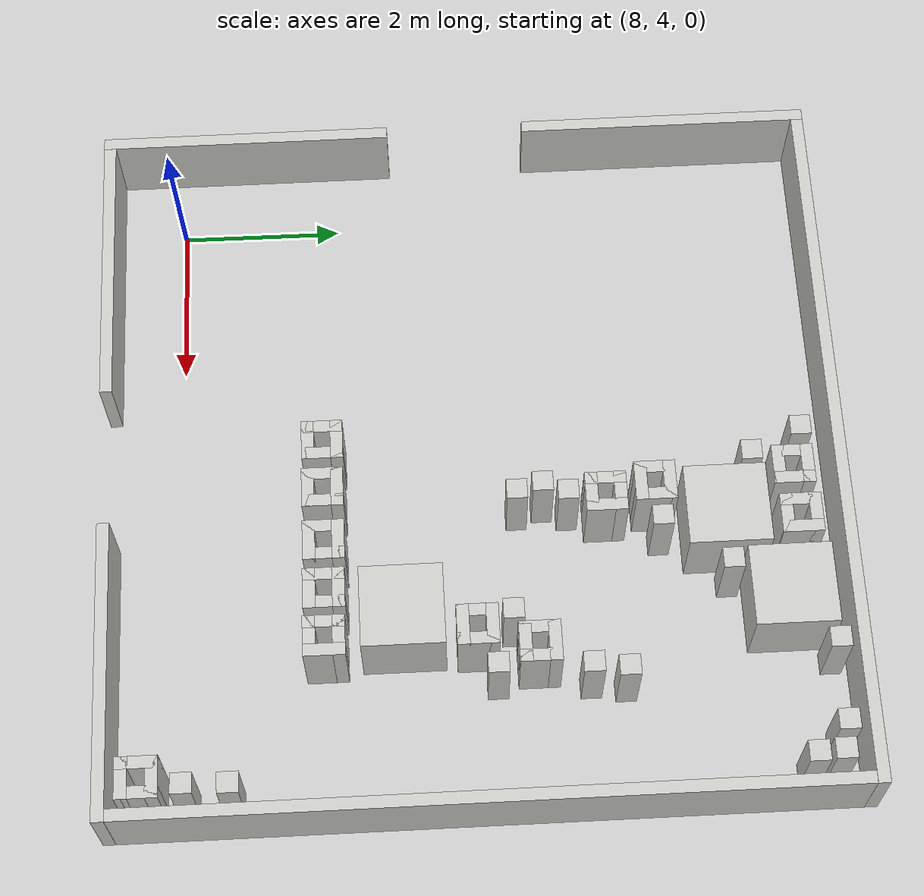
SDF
<sdf version="1.6">
 <world name="default">
  <model name="ground_plane">
   <static>1</static>
   <link name="link">
    <collision name="collision">
     <geometry><plane><normal>0 0 1</normal><size>100 100</size></plane></geometry>
     <surface><friction><ode><mu>100</mu><mu2>50</mu2></ode></friction></surface>
    </collision>
    <visual name="visual">
     <cast_shadows>0</cast_shadows>
     <geometry><plane><normal>0 0 1</normal><size>100 100</size></plane></geometry>
     <material>
      <script><uri>file://media/materials/scripts/concrete.material</uri><name>Concrete/1</name></script>
     </material>
    </visual>
   </link>
  </model>
  <model name="room_5x5_right">
   <static>1</static>
   <pose>11.5539 7.57729 0 0 -0 0</pose>
   <link name="Wall_1">
    <collision name="Wall_1_Collision">
     <geometry><box><size>8.75 0.15 1</size></box></geometry>
     <pose>0 0 0.5 0 -0 0</pose>
    </collision>
    <visual name="Wall_1_Visual">
     <pose>0 0 0.5 0 -0 0</pose>
     <geometry><box><size>8.75 0.15 1</size></box></geometry>
     <material>
      <script><uri>file://media/materials/scripts/gazebo.material</uri><name>Gazebo/CeilingTiled</name></script>
      <ambient>1 0.764706 0.305882 1</ambient>
     </material>
    </visual>
    <pose>4.44912 -0.000431 0 0 0 -1.5708</pose>
   </link>
   <link name="Wall_2">
    <collision name="Wall_2_Collision">
     <geometry><box><size>3.65 0.15 1</size></box></geometry>
     <pose>0 0 0.5 0 -0 0</pose>
    </collision>
    <visual name="Wall_2_Visual">
     <pose>0 0 0.5 0 -0 0</pose>
     <geometry><box><size>3.65 0.15 1</size></box></geometry>
     <material>
      <script><uri>file://media/materials/scripts/gazebo.material</uri><name>Gazebo/CeilingTiled</name></script>
      <ambient>1 0.764706 0.305882 1</ambient>
     </material>
    </visual>
    <pose>-4.44961 2.70076 0 0 0 -1.5708</pose>
   </link>
   <link name="Wall_3">
    <collision name="Wall_3_Collision">
     <geometry><box><size>3.65 0.15 1</size></box></geometry>
     <pose>0 0 0.5 0 -0 0</pose>
    </collision>
    <visual name="Wall_3_Visual">
     <pose>0 0 0.5 0 -0 0</pose>
     <geometry><box><size>3.65 0.15 1</size></box></geometry>
     <material>
      <script><uri>file://media/materials/scripts/gazebo.material</uri><name>Gazebo/CeilingTiled</name></script>
      <ambient>1 0.764706 0.305882 1</ambient>
     </material>
    </visual>
    <pose>2.69961 -4.45076 0 0 -0 0</pose>
   </link>
   <link name="Wall_4">
    <collision name="Wall_4_Collision">
     <geometry><box><size>8.90028 0.15 1</size></box></geometry>
     <pose>0 0 0.5 0 -0 0</pose>
    </collision>
    <visual name="Wall_4_Visual">
     <pose>0 0 0.5 0 -0 0</pose>
     <geometry><box><size>8.90028 0.15 1</size></box></geometry>
     <material>
      <script><uri>file://media/materials/scripts/gazebo.material</uri><name>Gazebo/CeilingTiled</name></script>
      <ambient>1 0.764706 0.305882 1</ambient>
     </material>
    </visual>
    <pose>0.074346 4.45022 0 0 0 -6.5e-05</pose>
   </link>
   <link name="Wall_5">
    <collision name="Wall_5_Collision">
     <geometry><box><size>3.5 0.15 1</size></box></geometry>
     <pose>0 0 0.5 0 -0 0</pose>
    </collision>
    <visual name="Wall_5_Visual">
     <pose>0 0 0.5 0 -0 0</pose>
     <geometry><box><size>3.5 0.15 1</size></box></geometry>
     <material>
      <script><uri>file://media/materials/scripts/gazebo.material</uri><name>Gazebo/CeilingTiled</name></script>
      <ambient>1 0.764706 0.305882 1</ambient>
     </material>
    </visual>
    <pose>-2.62383 -4.4498 0 0 -0 0</pose>
   </link>
   <link name="Wall_6">
    <collision name="Wall_6_Collision">
     <geometry><box><size>3.65 0.15 1</size></box></geometry>
     <pose>0 0 0.5 0 -0 0</pose>
    </collision>
    <visual name="Wall_6_Visual">
     <pose>0 0 0.5 0 -0 0</pose>
     <geometry><box><size>3.65 0.15 1</size></box></geometry>
     <material>
      <script><uri>file://media/materials/scripts/gazebo.material</uri><name>Gazebo/CeilingTiled</name></script>
      <ambient>1 0.764706 0.305882 1</ambient>
     </material>
    </visual>
    <pose>-4.44941 -2.70044 0 0 0 -1.5708</pose>
   </link>
  </model>
  <model name="obstacle_squarepillar_medium_clone_0">
   <static>1</static>
   <pose>11.4578 5.7594 0 0 -0 0</pose>
   <link name="Wall_1">
    <collision name="Wall_1_Collision">
     <geometry><box><size>0.5 0.15 1</size></box></geometry>
     <pose>0 0 0.5 0 -0 0</pose>
    </collision>
    <visual name="Wall_1_Visual">
     <pose>0 0 0.5 0 -0 0</pose>
     <geometry><box><size>0.5 0.15 1</size></box></geometry>
     <material>
      <script><uri>file://media/materials/scripts/gazebo.material</uri><name>Gazebo/CeilingTiled</name></script>
      <ambient>1 0.764706 0.305882 1</ambient>
     </material>
    </visual>
    <pose>-0.175 0 0 0 0 -1.5708</pose>
   </link>
   <link name="Wall_2">
    <collision name="Wall_2_Collision">
     <geometry><box><size>0.5 0.15 1</size></box></geometry>
     <pose>0 0 0.5 0 -0 0</pose>
    </collision>
    <visual name="Wall_2_Visual">
     <pose>0 0 0.5 0 -0 0</pose>
     <geometry><box><size>0.5 0.15 1</size></box></geometry>
     <material>
      <script><uri>file://media/materials/scripts/gazebo.material</uri><name>Gazebo/CeilingTiled</name></script>
      <ambient>1 0.764706 0.305882 1</ambient>
     </material>
    </visual>
    <pose>0 -0.175 0 0 -0 0</pose>
   </link>
   <link name="Wall_3">
    <collision name="Wall_3_Collision">
     <geometry><box><size>0.5 0.15 1</size></box></geometry>
     <pose>0 0 0.5 0 -0 0</pose>
    </collision>
    <visual name="Wall_3_Visual">
     <pose>0 0 0.5 0 -0 0</pose>
     <geometry><box><size>0.5 0.15 1</size></box></geometry>
     <material>
      <script><uri>file://media/materials/scripts/gazebo.material</uri><name>Gazebo/CeilingTiled</name></script>
      <ambient>1 0.764706 0.305882 1</ambient>
     </material>
    </visual>
    <pose>0.175 0 0 0 -0 1.5708</pose>
   </link>
   <link name="Wall_4">
    <collision name="Wall_4_Collision">
     <geometry><box><size>0.5 0.15 1</size></box></geometry>
     <pose>0 0 0.5 0 -0 0</pose>
    </collision>
    <visual name="Wall_4_Visual">
     <pose>0 0 0.5 0 -0 0</pose>
     <geometry><box><size>0.5 0.15 1</size></box></geometry>
     <material>
      <script><uri>file://media/materials/scripts/gazebo.material</uri><name>Gazebo/CeilingTiled</name></script>
      <ambient>1 0.764706 0.305882 1</ambient>
     </material>
    </visual>
    <pose>0 0.175 0 0 -0 3.14159</pose>
   </link>
  </model>
  <model name="obstacle_squarepillar_medium_clone_1">
   <static>1</static>
   <pose>12.0826 5.74941 0 0 -0 0</pose>
   <link name="Wall_1">
    <collision name="Wall_1_Collision">
     <geometry><box><size>0.5 0.15 1</size></box></geometry>
     <pose>0 0 0.5 0 -0 0</pose>
    </collision>
    <visual name="Wall_1_Visual">
     <pose>0 0 0.5 0 -0 0</pose>
     <geometry><box><size>0.5 0.15 1</size></box></geometry>
     <material>
      <script><uri>file://media/materials/scripts/gazebo.material</uri><name>Gazebo/CeilingTiled</name></script>
      <ambient>1 0.764706 0.305882 1</ambient>
     </material>
    </visual>
    <pose>-0.175 0 0 0 0 -1.5708</pose>
   </link>
   <link name="Wall_2">
    <collision name="Wall_2_Collision">
     <geometry><box><size>0.5 0.15 1</size></box></geometry>
     <pose>0 0 0.5 0 -0 0</pose>
    </collision>
    <visual name="Wall_2_Visual">
     <pose>0 0 0.5 0 -0 0</pose>
     <geometry><box><size>0.5 0.15 1</size></box></geometry>
     <material>
      <script><uri>file://media/materials/scripts/gazebo.material</uri><name>Gazebo/CeilingTiled</name></script>
      <ambient>1 0.764706 0.305882 1</ambient>
     </material>
    </visual>
    <pose>0 -0.175 0 0 -0 0</pose>
   </link>
   <link name="Wall_3">
    <collision name="Wall_3_Collision">
     <geometry><box><size>0.5 0.15 1</size></box></geometry>
     <pose>0 0 0.5 0 -0 0</pose>
    </collision>
    <visual name="Wall_3_Visual">
     <pose>0 0 0.5 0 -0 0</pose>
     <geometry><box><size>0.5 0.15 1</size></box></geometry>
     <material>
      <script><uri>file://media/materials/scripts/gazebo.material</uri><name>Gazebo/CeilingTiled</name></script>
      <ambient>1 0.764706 0.305882 1</ambient>
     </material>
    </visual>
    <pose>0.175 0 0 0 -0 1.5708</pose>
   </link>
   <link name="Wall_4">
    <collision name="Wall_4_Collision">
     <geometry><box><size>0.5 0.15 1</size></box></geometry>
     <pose>0 0 0.5 0 -0 0</pose>
    </collision>
    <visual name="Wall_4_Visual">
     <pose>0 0 0.5 0 -0 0</pose>
     <geometry><box><size>0.5 0.15 1</size></box></geometry>
     <material>
      <script><uri>file://media/materials/scripts/gazebo.material</uri><name>Gazebo/CeilingTiled</name></script>
      <ambient>1 0.764706 0.305882 1</ambient>
     </material>
    </visual>
    <pose>0 0.175 0 0 -0 3.14159</pose>
   </link>
  </model>
  <model name="obstacle_squarepillar_medium_clone_2">
   <static>1</static>
   <pose>12.7662 5.74596 0 0 -0 0</pose>
   <link name="Wall_1">
    <collision name="Wall_1_Collision">
     <geometry><box><size>0.5 0.15 1</size></box></geometry>
     <pose>0 0 0.5 0 -0 0</pose>
    </collision>
    <visual name="Wall_1_Visual">
     <pose>0 0 0.5 0 -0 0</pose>
     <geometry><box><size>0.5 0.15 1</size></box></geometry>
     <material>
      <script><uri>file://media/materials/scripts/gazebo.material</uri><name>Gazebo/CeilingTiled</name></script>
      <ambient>1 0.764706 0.305882 1</ambient>
     </material>
    </visual>
    <pose>-0.175 0 0 0 0 -1.5708</pose>
   </link>
   <link name="Wall_2">
    <collision name="Wall_2_Collision">
     <geometry><box><size>0.5 0.15 1</size></box></geometry>
     <pose>0 0 0.5 0 -0 0</pose>
    </collision>
    <visual name="Wall_2_Visual">
     <pose>0 0 0.5 0 -0 0</pose>
     <geometry><box><size>0.5 0.15 1</size></box></geometry>
     <material>
      <script><uri>file://media/materials/scripts/gazebo.material</uri><name>Gazebo/CeilingTiled</name></script>
      <ambient>1 0.764706 0.305882 1</ambient>
     </material>
    </visual>
    <pose>0 -0.175 0 0 -0 0</pose>
   </link>
   <link name="Wall_3">
    <collision name="Wall_3_Collision">
     <geometry><box><size>0.5 0.15 1</size></box></geometry>
     <pose>0 0 0.5 0 -0 0</pose>
    </collision>
    <visual name="Wall_3_Visual">
     <pose>0 0 0.5 0 -0 0</pose>
     <geometry><box><size>0.5 0.15 1</size></box></geometry>
     <material>
      <script><uri>file://media/materials/scripts/gazebo.material</uri><name>Gazebo/CeilingTiled</name></script>
      <ambient>1 0.764706 0.305882 1</ambient>
     </material>
    </visual>
    <pose>0.175 0 0 0 -0 1.5708</pose>
   </link>
   <link name="Wall_4">
    <collision name="Wall_4_Collision">
     <geometry><box><size>0.5 0.15 1</size></box></geometry>
     <pose>0 0 0.5 0 -0 0</pose>
    </collision>
    <visual name="Wall_4_Visual">
     <pose>0 0 0.5 0 -0 0</pose>
     <geometry><box><size>0.5 0.15 1</size></box></geometry>
     <material>
      <script><uri>file://media/materials/scripts/gazebo.material</uri><name>Gazebo/CeilingTiled</name></script>
      <ambient>1 0.764706 0.305882 1</ambient>
     </material>
    </visual>
    <pose>0 0.175 0 0 -0 3.14159</pose>
   </link>
  </model>
  <model name="obstacle_squarepillar_medium_clone_3">
   <static>1</static>
   <pose>13.3806 5.73505 0 0 -0 0</pose>
   <link name="Wall_1">
    <collision name="Wall_1_Collision">
     <geometry><box><size>0.5 0.15 1</size></box></geometry>
     <pose>0 0 0.5 0 -0 0</pose>
    </collision>
    <visual name="Wall_1_Visual">
     <pose>0 0 0.5 0 -0 0</pose>
     <geometry><box><size>0.5 0.15 1</size></box></geometry>
     <material>
      <script><uri>file://media/materials/scripts/gazebo.material</uri><name>Gazebo/CeilingTiled</name></script>
      <ambient>1 0.764706 0.305882 1</ambient>
     </material>
    </visual>
    <pose>-0.175 0 0 0 0 -1.5708</pose>
   </link>
   <link name="Wall_2">
    <collision name="Wall_2_Collision">
     <geometry><box><size>0.5 0.15 1</size></box></geometry>
     <pose>0 0 0.5 0 -0 0</pose>
    </collision>
    <visual name="Wall_2_Visual">
     <pose>0 0 0.5 0 -0 0</pose>
     <geometry><box><size>0.5 0.15 1</size></box></geometry>
     <material>
      <script><uri>file://media/materials/scripts/gazebo.material</uri><name>Gazebo/CeilingTiled</name></script>
      <ambient>1 0.764706 0.305882 1</ambient>
     </material>
    </visual>
    <pose>0 -0.175 0 0 -0 0</pose>
   </link>
   <link name="Wall_3">
    <collision name="Wall_3_Collision">
     <geometry><box><size>0.5 0.15 1</size></box></geometry>
     <pose>0 0 0.5 0 -0 0</pose>
    </collision>
    <visual name="Wall_3_Visual">
     <pose>0 0 0.5 0 -0 0</pose>
     <geometry><box><size>0.5 0.15 1</size></box></geometry>
     <material>
      <script><uri>file://media/materials/scripts/gazebo.material</uri><name>Gazebo/CeilingTiled</name></script>
      <ambient>1 0.764706 0.305882 1</ambient>
     </material>
    </visual>
    <pose>0.175 0 0 0 -0 1.5708</pose>
   </link>
   <link name="Wall_4">
    <collision name="Wall_4_Collision">
     <geometry><box><size>0.5 0.15 1</size></box></geometry>
     <pose>0 0 0.5 0 -0 0</pose>
    </collision>
    <visual name="Wall_4_Visual">
     <pose>0 0 0.5 0 -0 0</pose>
     <geometry><box><size>0.5 0.15 1</size></box></geometry>
     <material>
      <script><uri>file://media/materials/scripts/gazebo.material</uri><name>Gazebo/CeilingTiled</name></script>
      <ambient>1 0.764706 0.305882 1</ambient>
     </material>
    </visual>
    <pose>0 0.175 0 0 -0 3.14159</pose>
   </link>
  </model>
  <model name="obstacle_squarepillar_medium_clone_4">
   <static>1</static>
   <pose>13.977 5.72223 0 0 -0 0</pose>
   <link name="Wall_1">
    <collision name="Wall_1_Collision">
     <geometry><box><size>0.5 0.15 1</size></box></geometry>
     <pose>0 0 0.5 0 -0 0</pose>
    </collision>
    <visual name="Wall_1_Visual">
     <pose>0 0 0.5 0 -0 0</pose>
     <geometry><box><size>0.5 0.15 1</size></box></geometry>
     <material>
      <script><uri>file://media/materials/scripts/gazebo.material</uri><name>Gazebo/CeilingTiled</name></script>
      <ambient>1 0.764706 0.305882 1</ambient>
     </material>
    </visual>
    <pose>-0.175 0 0 0 0 -1.5708</pose>
   </link>
   <link name="Wall_2">
    <collision name="Wall_2_Collision">
     <geometry><box><size>0.5 0.15 1</size></box></geometry>
     <pose>0 0 0.5 0 -0 0</pose>
    </collision>
    <visual name="Wall_2_Visual">
     <pose>0 0 0.5 0 -0 0</pose>
     <geometry><box><size>0.5 0.15 1</size></box></geometry>
     <material>
      <script><uri>file://media/materials/scripts/gazebo.material</uri><name>Gazebo/CeilingTiled</name></script>
      <ambient>1 0.764706 0.305882 1</ambient>
     </material>
    </visual>
    <pose>0 -0.175 0 0 -0 0</pose>
   </link>
   <link name="Wall_3">
    <collision name="Wall_3_Collision">
     <geometry><box><size>0.5 0.15 1</size></box></geometry>
     <pose>0 0 0.5 0 -0 0</pose>
    </collision>
    <visual name="Wall_3_Visual">
     <pose>0 0 0.5 0 -0 0</pose>
     <geometry><box><size>0.5 0.15 1</size></box></geometry>
     <material>
      <script><uri>file://media/materials/scripts/gazebo.material</uri><name>Gazebo/CeilingTiled</name></script>
      <ambient>1 0.764706 0.305882 1</ambient>
     </material>
    </visual>
    <pose>0.175 0 0 0 -0 1.5708</pose>
   </link>
   <link name="Wall_4">
    <collision name="Wall_4_Collision">
     <geometry><box><size>0.5 0.15 1</size></box></geometry>
     <pose>0 0 0.5 0 -0 0</pose>
    </collision>
    <visual name="Wall_4_Visual">
     <pose>0 0 0.5 0 -0 0</pose>
     <geometry><box><size>0.5 0.15 1</size></box></geometry>
     <material>
      <script><uri>file://media/materials/scripts/gazebo.material</uri><name>Gazebo/CeilingTiled</name></script>
      <ambient>1 0.764706 0.305882 1</ambient>
     </material>
    </visual>
    <pose>0 0.175 0 0 -0 3.14159</pose>
   </link>
  </model>
  <model name="obstacle_squarepillar_large">
   <pose>12.5398 10.5984 0 0 -0 0</pose>
   <link name="Pillar">
    <collision name="Pillar_Collision">
     <geometry><box><size>1 1 1</size></box></geometry>
     <pose>0 0 0.5 0 -0 0</pose>
    </collision>
    <visual name="Pillar_Visual">
     <pose>0 0 0.5 0 -0 0</pose>
     <geometry><box><size>1 1 1</size></box></geometry>
     <material>
      <script><uri>file://media/materials/scripts/gazebo.material</uri><name>Gazebo/CeilingTiled</name></script>
      <ambient>1 0.764706 0.305882 1</ambient>
     </material>
    </visual>
   </link>
   <static>1</static>
  </model>
  <model name="obstacle_squarepillar_large_clone">
   <pose>13.6059 11.2804 0 0 -0 0</pose>
   <link name="Pillar">
    <collision name="Pillar_Collision">
     <geometry><box><size>1 1 1</size></box></geometry>
     <pose>0 0 0.5 0 -0 0</pose>
    </collision>
    <visual name="Pillar_Visual">
     <pose>0 0 0.5 0 -0 0</pose>
     <geometry><box><size>1 1 1</size></box></geometry>
     <material>
      <script><uri>file://media/materials/scripts/gazebo.material</uri><name>Gazebo/CeilingTiled</name></script>
      <ambient>1 0.764706 0.305882 1</ambient>
     </material>
    </visual>
   </link>
   <static>1</static>
  </model>
  <model name="obstacle_squarepillar_large_clone_1">
   <pose>13.6406 6.64617 0 0 -0 0</pose>
   <link name="Pillar">
    <collision name="Pillar_Collision">
     <geometry><box><size>1 1 1</size></box></geometry>
     <pose>0 0 0.5 0 -0 0</pose>
    </collision>
    <visual name="Pillar_Visual">
     <pose>0 0 0.5 0 -0 0</pose>
     <geometry><box><size>1 1 1</size></box></geometry>
     <material>
      <script><uri>file://media/materials/scripts/gazebo.material</uri><name>Gazebo/CeilingTiled</name></script>
      <ambient>1 0.764706 0.305882 1</ambient>
     </material>
    </visual>
   </link>
   <static>1</static>
  </model>
  <model name="obstacle_squarepillar_medium_0">
   <static>1</static>
   <pose>12.0676 11.4396 0 0 -0 0</pose>
   <link name="Wall_1">
    <collision name="Wall_1_Collision">
     <geometry><box><size>0.5 0.15 1</size></box></geometry>
     <pose>0 0 0.5 0 -0 0</pose>
    </collision>
    <visual name="Wall_1_Visual">
     <pose>0 0 0.5 0 -0 0</pose>
     <geometry><box><size>0.5 0.15 1</size></box></geometry>
     <material>
      <script><uri>file://media/materials/scripts/gazebo.material</uri><name>Gazebo/CeilingTiled</name></script>
      <ambient>1 0.764706 0.305882 1</ambient>
     </material>
    </visual>
    <pose>-0.175 0 0 0 0 -1.5708</pose>
   </link>
   <link name="Wall_2">
    <collision name="Wall_2_Collision">
     <geometry><box><size>0.5 0.15 1</size></box></geometry>
     <pose>0 0 0.5 0 -0 0</pose>
    </collision>
    <visual name="Wall_2_Visual">
     <pose>0 0 0.5 0 -0 0</pose>
     <geometry><box><size>0.5 0.15 1</size></box></geometry>
     <material>
      <script><uri>file://media/materials/scripts/gazebo.material</uri><name>Gazebo/CeilingTiled</name></script>
      <ambient>1 0.764706 0.305882 1</ambient>
     </material>
    </visual>
    <pose>0 -0.175 0 0 -0 0</pose>
   </link>
   <link name="Wall_3">
    <collision name="Wall_3_Collision">
     <geometry><box><size>0.5 0.15 1</size></box></geometry>
     <pose>0 0 0.5 0 -0 0</pose>
    </collision>
    <visual name="Wall_3_Visual">
     <pose>0 0 0.5 0 -0 0</pose>
     <geometry><box><size>0.5 0.15 1</size></box></geometry>
     <material>
      <script><uri>file://media/materials/scripts/gazebo.material</uri><name>Gazebo/CeilingTiled</name></script>
      <ambient>1 0.764706 0.305882 1</ambient>
     </material>
    </visual>
    <pose>0.175 0 0 0 -0 1.5708</pose>
   </link>
   <link name="Wall_4">
    <collision name="Wall_4_Collision">
     <geometry><box><size>0.5 0.15 1</size></box></geometry>
     <pose>0 0 0.5 0 -0 0</pose>
    </collision>
    <visual name="Wall_4_Visual">
     <pose>0 0 0.5 0 -0 0</pose>
     <geometry><box><size>0.5 0.15 1</size></box></geometry>
     <material>
      <script><uri>file://media/materials/scripts/gazebo.material</uri><name>Gazebo/CeilingTiled</name></script>
      <ambient>1 0.764706 0.305882 1</ambient>
     </material>
    </visual>
    <pose>0 0.175 0 0 -0 3.14159</pose>
   </link>
  </model>
  <model name="obstacle_squarepillar_medium_0_clone_1">
   <static>1</static>
   <pose>12.7084 11.4719 0 0 -0 0</pose>
   <link name="Wall_1">
    <collision name="Wall_1_Collision">
     <geometry><box><size>0.5 0.15 1</size></box></geometry>
     <pose>0 0 0.5 0 -0 0</pose>
    </collision>
    <visual name="Wall_1_Visual">
     <pose>0 0 0.5 0 -0 0</pose>
     <geometry><box><size>0.5 0.15 1</size></box></geometry>
     <material>
      <script><uri>file://media/materials/scripts/gazebo.material</uri><name>Gazebo/CeilingTiled</name></script>
      <ambient>1 0.764706 0.305882 1</ambient>
     </material>
    </visual>
    <pose>-0.175 0 0 0 0 -1.5708</pose>
   </link>
   <link name="Wall_2">
    <collision name="Wall_2_Collision">
     <geometry><box><size>0.5 0.15 1</size></box></geometry>
     <pose>0 0 0.5 0 -0 0</pose>
    </collision>
    <visual name="Wall_2_Visual">
     <pose>0 0 0.5 0 -0 0</pose>
     <geometry><box><size>0.5 0.15 1</size></box></geometry>
     <material>
      <script><uri>file://media/materials/scripts/gazebo.material</uri><name>Gazebo/CeilingTiled</name></script>
      <ambient>1 0.764706 0.305882 1</ambient>
     </material>
    </visual>
    <pose>0 -0.175 0 0 -0 0</pose>
   </link>
   <link name="Wall_3">
    <collision name="Wall_3_Collision">
     <geometry><box><size>0.5 0.15 1</size></box></geometry>
     <pose>0 0 0.5 0 -0 0</pose>
    </collision>
    <visual name="Wall_3_Visual">
     <pose>0 0 0.5 0 -0 0</pose>
     <geometry><box><size>0.5 0.15 1</size></box></geometry>
     <material>
      <script><uri>file://media/materials/scripts/gazebo.material</uri><name>Gazebo/CeilingTiled</name></script>
      <ambient>1 0.764706 0.305882 1</ambient>
     </material>
    </visual>
    <pose>0.175 0 0 0 -0 1.5708</pose>
   </link>
   <link name="Wall_4">
    <collision name="Wall_4_Collision">
     <geometry><box><size>0.5 0.15 1</size></box></geometry>
     <pose>0 0 0.5 0 -0 0</pose>
    </collision>
    <visual name="Wall_4_Visual">
     <pose>0 0 0.5 0 -0 0</pose>
     <geometry><box><size>0.5 0.15 1</size></box></geometry>
     <material>
      <script><uri>file://media/materials/scripts/gazebo.material</uri><name>Gazebo/CeilingTiled</name></script>
      <ambient>1 0.764706 0.305882 1</ambient>
     </material>
    </visual>
    <pose>0 0.175 0 0 -0 3.14159</pose>
   </link>
  </model>
  <model name="obstacle_squarepillar_medium_0_clone_0_clone_0">
   <static>1</static>
   <pose>12.1982 9.75831 0 0 -0 0</pose>
   <link name="Wall_1">
    <collision name="Wall_1_Collision">
     <geometry><box><size>0.5 0.15 1</size></box></geometry>
     <pose>0 0 0.5 0 -0 0</pose>
    </collision>
    <visual name="Wall_1_Visual">
     <pose>0 0 0.5 0 -0 0</pose>
     <geometry><box><size>0.5 0.15 1</size></box></geometry>
     <material>
      <script><uri>file://media/materials/scripts/gazebo.material</uri><name>Gazebo/CeilingTiled</name></script>
      <ambient>1 0.764706 0.305882 1</ambient>
     </material>
    </visual>
    <pose>-0.175 0 0 0 0 -1.5708</pose>
   </link>
   <link name="Wall_2">
    <collision name="Wall_2_Collision">
     <geometry><box><size>0.5 0.15 1</size></box></geometry>
     <pose>0 0 0.5 0 -0 0</pose>
    </collision>
    <visual name="Wall_2_Visual">
     <pose>0 0 0.5 0 -0 0</pose>
     <geometry><box><size>0.5 0.15 1</size></box></geometry>
     <material>
      <script><uri>file://media/materials/scripts/gazebo.material</uri><name>Gazebo/CeilingTiled</name></script>
      <ambient>1 0.764706 0.305882 1</ambient>
     </material>
    </visual>
    <pose>0 -0.175 0 0 -0 0</pose>
   </link>
   <link name="Wall_3">
    <collision name="Wall_3_Collision">
     <geometry><box><size>0.5 0.15 1</size></box></geometry>
     <pose>0 0 0.5 0 -0 0</pose>
    </collision>
    <visual name="Wall_3_Visual">
     <pose>0 0 0.5 0 -0 0</pose>
     <geometry><box><size>0.5 0.15 1</size></box></geometry>
     <material>
      <script><uri>file://media/materials/scripts/gazebo.material</uri><name>Gazebo/CeilingTiled</name></script>
      <ambient>1 0.764706 0.305882 1</ambient>
     </material>
    </visual>
    <pose>0.175 0 0 0 -0 1.5708</pose>
   </link>
   <link name="Wall_4">
    <collision name="Wall_4_Collision">
     <geometry><box><size>0.5 0.15 1</size></box></geometry>
     <pose>0 0 0.5 0 -0 0</pose>
    </collision>
    <visual name="Wall_4_Visual">
     <pose>0 0 0.5 0 -0 0</pose>
     <geometry><box><size>0.5 0.15 1</size></box></geometry>
     <material>
      <script><uri>file://media/materials/scripts/gazebo.material</uri><name>Gazebo/CeilingTiled</name></script>
      <ambient>1 0.764706 0.305882 1</ambient>
     </material>
    </visual>
    <pose>0 0.175 0 0 -0 3.14159</pose>
   </link>
  </model>
  <model name="obstacle_squarepillar_medium_0_clone_0_clone_1">
   <static>1</static>
   <pose>13.925 7.52764 0 0 -0 0</pose>
   <link name="Wall_1">
    <collision name="Wall_1_Collision">
     <geometry><box><size>0.5 0.15 1</size></box></geometry>
     <pose>0 0 0.5 0 -0 0</pose>
    </collision>
    <visual name="Wall_1_Visual">
     <pose>0 0 0.5 0 -0 0</pose>
     <geometry><box><size>0.5 0.15 1</size></box></geometry>
     <material>
      <script><uri>file://media/materials/scripts/gazebo.material</uri><name>Gazebo/CeilingTiled</name></script>
      <ambient>1 0.764706 0.305882 1</ambient>
     </material>
    </visual>
    <pose>-0.175 0 0 0 0 -1.5708</pose>
   </link>
   <link name="Wall_2">
    <collision name="Wall_2_Collision">
     <geometry><box><size>0.5 0.15 1</size></box></geometry>
     <pose>0 0 0.5 0 -0 0</pose>
    </collision>
    <visual name="Wall_2_Visual">
     <pose>0 0 0.5 0 -0 0</pose>
     <geometry><box><size>0.5 0.15 1</size></box></geometry>
     <material>
      <script><uri>file://media/materials/scripts/gazebo.material</uri><name>Gazebo/CeilingTiled</name></script>
      <ambient>1 0.764706 0.305882 1</ambient>
     </material>
    </visual>
    <pose>0 -0.175 0 0 -0 0</pose>
   </link>
   <link name="Wall_3">
    <collision name="Wall_3_Collision">
     <geometry><box><size>0.5 0.15 1</size></box></geometry>
     <pose>0 0 0.5 0 -0 0</pose>
    </collision>
    <visual name="Wall_3_Visual">
     <pose>0 0 0.5 0 -0 0</pose>
     <geometry><box><size>0.5 0.15 1</size></box></geometry>
     <material>
      <script><uri>file://media/materials/scripts/gazebo.material</uri><name>Gazebo/CeilingTiled</name></script>
      <ambient>1 0.764706 0.305882 1</ambient>
     </material>
    </visual>
    <pose>0.175 0 0 0 -0 1.5708</pose>
   </link>
   <link name="Wall_4">
    <collision name="Wall_4_Collision">
     <geometry><box><size>0.5 0.15 1</size></box></geometry>
     <pose>0 0 0.5 0 -0 0</pose>
    </collision>
    <visual name="Wall_4_Visual">
     <pose>0 0 0.5 0 -0 0</pose>
     <geometry><box><size>0.5 0.15 1</size></box></geometry>
     <material>
      <script><uri>file://media/materials/scripts/gazebo.material</uri><name>Gazebo/CeilingTiled</name></script>
      <ambient>1 0.764706 0.305882 1</ambient>
     </material>
    </visual>
    <pose>0 0.175 0 0 -0 3.14159</pose>
   </link>
  </model>
  <model name="obstacle_squarepillar_medium_0_clone_0_clone_2">
   <static>1</static>
   <pose>12.3119 9.15646 0 0 -0 0</pose>
   <link name="Wall_1">
    <collision name="Wall_1_Collision">
     <geometry><box><size>0.5 0.15 1</size></box></geometry>
     <pose>0 0 0.5 0 -0 0</pose>
    </collision>
    <visual name="Wall_1_Visual">
     <pose>0 0 0.5 0 -0 0</pose>
     <geometry><box><size>0.5 0.15 1</size></box></geometry>
     <material>
      <script><uri>file://media/materials/scripts/gazebo.material</uri><name>Gazebo/CeilingTiled</name></script>
      <ambient>1 0.764706 0.305882 1</ambient>
     </material>
    </visual>
    <pose>-0.175 0 0 0 0 -1.5708</pose>
   </link>
   <link name="Wall_2">
    <collision name="Wall_2_Collision">
     <geometry><box><size>0.5 0.15 1</size></box></geometry>
     <pose>0 0 0.5 0 -0 0</pose>
    </collision>
    <visual name="Wall_2_Visual">
     <pose>0 0 0.5 0 -0 0</pose>
     <geometry><box><size>0.5 0.15 1</size></box></geometry>
     <material>
      <script><uri>file://media/materials/scripts/gazebo.material</uri><name>Gazebo/CeilingTiled</name></script>
      <ambient>1 0.764706 0.305882 1</ambient>
     </material>
    </visual>
    <pose>0 -0.175 0 0 -0 0</pose>
   </link>
   <link name="Wall_3">
    <collision name="Wall_3_Collision">
     <geometry><box><size>0.5 0.15 1</size></box></geometry>
     <pose>0 0 0.5 0 -0 0</pose>
    </collision>
    <visual name="Wall_3_Visual">
     <pose>0 0 0.5 0 -0 0</pose>
     <geometry><box><size>0.5 0.15 1</size></box></geometry>
     <material>
      <script><uri>file://media/materials/scripts/gazebo.material</uri><name>Gazebo/CeilingTiled</name></script>
      <ambient>1 0.764706 0.305882 1</ambient>
     </material>
    </visual>
    <pose>0.175 0 0 0 -0 1.5708</pose>
   </link>
   <link name="Wall_4">
    <collision name="Wall_4_Collision">
     <geometry><box><size>0.5 0.15 1</size></box></geometry>
     <pose>0 0 0.5 0 -0 0</pose>
    </collision>
    <visual name="Wall_4_Visual">
     <pose>0 0 0.5 0 -0 0</pose>
     <geometry><box><size>0.5 0.15 1</size></box></geometry>
     <material>
      <script><uri>file://media/materials/scripts/gazebo.material</uri><name>Gazebo/CeilingTiled</name></script>
      <ambient>1 0.764706 0.305882 1</ambient>
     </material>
    </visual>
    <pose>0 0.175 0 0 -0 3.14159</pose>
   </link>
  </model>
  <model name="obstacle_squarepillar_medium_0_clone_0_clone_3">
   <static>1</static>
   <pose>14.1706 8.24669 0 0 -0 0</pose>
   <link name="Wall_1">
    <collision name="Wall_1_Collision">
     <geometry><box><size>0.5 0.15 1</size></box></geometry>
     <pose>0 0 0.5 0 -0 0</pose>
    </collision>
    <visual name="Wall_1_Visual">
     <pose>0 0 0.5 0 -0 0</pose>
     <geometry><box><size>0.5 0.15 1</size></box></geometry>
     <material>
      <script><uri>file://media/materials/scripts/gazebo.material</uri><name>Gazebo/CeilingTiled</name></script>
      <ambient>1 0.764706 0.305882 1</ambient>
     </material>
    </visual>
    <pose>-0.175 0 0 0 0 -1.5708</pose>
   </link>
   <link name="Wall_2">
    <collision name="Wall_2_Collision">
     <geometry><box><size>0.5 0.15 1</size></box></geometry>
     <pose>0 0 0.5 0 -0 0</pose>
    </collision>
    <visual name="Wall_2_Visual">
     <pose>0 0 0.5 0 -0 0</pose>
     <geometry><box><size>0.5 0.15 1</size></box></geometry>
     <material>
      <script><uri>file://media/materials/scripts/gazebo.material</uri><name>Gazebo/CeilingTiled</name></script>
      <ambient>1 0.764706 0.305882 1</ambient>
     </material>
    </visual>
    <pose>0 -0.175 0 0 -0 0</pose>
   </link>
   <link name="Wall_3">
    <collision name="Wall_3_Collision">
     <geometry><box><size>0.5 0.15 1</size></box></geometry>
     <pose>0 0 0.5 0 -0 0</pose>
    </collision>
    <visual name="Wall_3_Visual">
     <pose>0 0 0.5 0 -0 0</pose>
     <geometry><box><size>0.5 0.15 1</size></box></geometry>
     <material>
      <script><uri>file://media/materials/scripts/gazebo.material</uri><name>Gazebo/CeilingTiled</name></script>
      <ambient>1 0.764706 0.305882 1</ambient>
     </material>
    </visual>
    <pose>0.175 0 0 0 -0 1.5708</pose>
   </link>
   <link name="Wall_4">
    <collision name="Wall_4_Collision">
     <geometry><box><size>0.5 0.15 1</size></box></geometry>
     <pose>0 0 0.5 0 -0 0</pose>
    </collision>
    <visual name="Wall_4_Visual">
     <pose>0 0 0.5 0 -0 0</pose>
     <geometry><box><size>0.5 0.15 1</size></box></geometry>
     <material>
      <script><uri>file://media/materials/scripts/gazebo.material</uri><name>Gazebo/CeilingTiled</name></script>
      <ambient>1 0.764706 0.305882 1</ambient>
     </material>
    </visual>
    <pose>0 0.175 0 0 -0 3.14159</pose>
   </link>
  </model>
  <model name="obstacle_squarepillar_small_7">
   <static>1</static>
   <pose>14.4559 8.85452 0 0 -0 0</pose>
   <link name="Pillar">
    <collision name="Pillar_Collision">
     <geometry><box><size>0.25 0.25 1</size></box></geometry>
     <pose>0 0 0.5 0 -0 0</pose>
    </collision>
    <visual name="Pillar_Visual">
     <pose>0 0 0.5 0 -0 0</pose>
     <geometry><box><size>0.25 0.25 1</size></box></geometry>
     <material>
      <script><uri>file://media/materials/scripts/gazebo.material</uri><name>Gazebo/CeilingTiled</name></script>
      <ambient>1 0.764706 0.305882 1</ambient>
     </material>
    </visual>
   </link>
  </model>
  <model name="obstacle_squarepillar_small_7_clone">
   <static>1</static>
   <pose>14.5177 9.26737 0 0 -0 0</pose>
   <link name="Pillar">
    <collision name="Pillar_Collision">
     <geometry><box><size>0.25 0.25 1</size></box></geometry>
     <pose>0 0 0.5 0 -0 0</pose>
    </collision>
    <visual name="Pillar_Visual">
     <pose>0 0 0.5 0 -0 0</pose>
     <geometry><box><size>0.25 0.25 1</size></box></geometry>
     <material>
      <script><uri>file://media/materials/scripts/gazebo.material</uri><name>Gazebo/CeilingTiled</name></script>
      <ambient>1 0.764706 0.305882 1</ambient>
     </material>
    </visual>
   </link>
  </model>
  <model name="obstacle_squarepillar_small_7_clone_0">
   <static>1</static>
   <pose>15.2984 11.7244 0 0 -0 0</pose>
   <link name="Pillar">
    <collision name="Pillar_Collision">
     <geometry><box><size>0.25 0.25 1</size></box></geometry>
     <pose>0 0 0.5 0 -0 0</pose>
    </collision>
    <visual name="Pillar_Visual">
     <pose>0 0 0.5 0 -0 0</pose>
     <geometry><box><size>0.25 0.25 1</size></box></geometry>
     <material>
      <script><uri>file://media/materials/scripts/gazebo.material</uri><name>Gazebo/CeilingTiled</name></script>
      <ambient>1 0.764706 0.305882 1</ambient>
     </material>
    </visual>
   </link>
  </model>
  <model name="obstacle_squarepillar_small_7_clone_1">
   <static>1</static>
   <pose>15.6426 11.6474 0 0 -0 0</pose>
   <link name="Pillar">
    <collision name="Pillar_Collision">
     <geometry><box><size>0.25 0.25 1</size></box></geometry>
     <pose>0 0 0.5 0 -0 0</pose>
    </collision>
    <visual name="Pillar_Visual">
     <pose>0 0 0.5 0 -0 0</pose>
     <geometry><box><size>0.25 0.25 1</size></box></geometry>
     <material>
      <script><uri>file://media/materials/scripts/gazebo.material</uri><name>Gazebo/CeilingTiled</name></script>
      <ambient>1 0.764706 0.305882 1</ambient>
     </material>
    </visual>
   </link>
  </model>
  <model name="obstacle_squarepillar_small_7_clone_2">
   <static>1</static>
   <pose>15.6573 11.3393 0 0 -0 0</pose>
   <link name="Pillar">
    <collision name="Pillar_Collision">
     <geometry><box><size>0.25 0.25 1</size></box></geometry>
     <pose>0 0 0.5 0 -0 0</pose>
    </collision>
    <visual name="Pillar_Visual">
     <pose>0 0 0.5 0 -0 0</pose>
     <geometry><box><size>0.25 0.25 1</size></box></geometry>
     <material>
      <script><uri>file://media/materials/scripts/gazebo.material</uri><name>Gazebo/CeilingTiled</name></script>
      <ambient>1 0.764706 0.305882 1</ambient>
     </material>
    </visual>
   </link>
  </model>
  <model name="obstacle_squarepillar_small_7_clone_3">
   <static>1</static>
   <pose>14.298 11.7493 0 0 -0 0</pose>
   <link name="Pillar">
    <collision name="Pillar_Collision">
     <geometry><box><size>0.25 0.25 1</size></box></geometry>
     <pose>0 0 0.5 0 -0 0</pose>
    </collision>
    <visual name="Pillar_Visual">
     <pose>0 0 0.5 0 -0 0</pose>
     <geometry><box><size>0.25 0.25 1</size></box></geometry>
     <material>
      <script><uri>file://media/materials/scripts/gazebo.material</uri><name>Gazebo/CeilingTiled</name></script>
      <ambient>1 0.764706 0.305882 1</ambient>
     </material>
    </visual>
   </link>
  </model>
  <model name="obstacle_squarepillar_small_7_clone_4">
   <static>1</static>
   <pose>11.5549 11.5792 0 0 -0 0</pose>
   <link name="Pillar">
    <collision name="Pillar_Collision">
     <geometry><box><size>0.25 0.25 1</size></box></geometry>
     <pose>0 0 0.5 0 -0 0</pose>
    </collision>
    <visual name="Pillar_Visual">
     <pose>0 0 0.5 0 -0 0</pose>
     <geometry><box><size>0.25 0.25 1</size></box></geometry>
     <material>
      <script><uri>file://media/materials/scripts/gazebo.material</uri><name>Gazebo/CeilingTiled</name></script>
      <ambient>1 0.764706 0.305882 1</ambient>
     </material>
    </visual>
   </link>
  </model>
  <model name="obstacle_squarepillar_small_7_clone_5">
   <static>1</static>
   <pose>11.8535 10.9542 0 0 -0 0</pose>
   <link name="Pillar">
    <collision name="Pillar_Collision">
     <geometry><box><size>0.25 0.25 1</size></box></geometry>
     <pose>0 0 0.5 0 -0 0</pose>
    </collision>
    <visual name="Pillar_Visual">
     <pose>0 0 0.5 0 -0 0</pose>
     <geometry><box><size>0.25 0.25 1</size></box></geometry>
     <material>
      <script><uri>file://media/materials/scripts/gazebo.material</uri><name>Gazebo/CeilingTiled</name></script>
      <ambient>1 0.764706 0.305882 1</ambient>
     </material>
    </visual>
   </link>
  </model>
  <model name="obstacle_squarepillar_small_7_clone_6">
   <static>1</static>
   <pose>12.2646 8.70308 0 0 -0 0</pose>
   <link name="Pillar">
    <collision name="Pillar_Collision">
     <geometry><box><size>0.25 0.25 1</size></box></geometry>
     <pose>0 0 0.5 0 -0 0</pose>
    </collision>
    <visual name="Pillar_Visual">
     <pose>0 0 0.5 0 -0 0</pose>
     <geometry><box><size>0.25 0.25 1</size></box></geometry>
     <material>
      <script><uri>file://media/materials/scripts/gazebo.material</uri><name>Gazebo/CeilingTiled</name></script>
      <ambient>1 0.764706 0.305882 1</ambient>
     </material>
    </visual>
   </link>
  </model>
  <model name="obstacle_squarepillar_small_7_clone_7">
   <static>1</static>
   <pose>12.6527 9.81287 0 0 -0 0</pose>
   <link name="Pillar">
    <collision name="Pillar_Collision">
     <geometry><box><size>0.25 0.25 1</size></box></geometry>
     <pose>0 0 0.5 0 -0 0</pose>
    </collision>
    <visual name="Pillar_Visual">
     <pose>0 0 0.5 0 -0 0</pose>
     <geometry><box><size>0.25 0.25 1</size></box></geometry>
     <material>
      <script><uri>file://media/materials/scripts/gazebo.material</uri><name>Gazebo/CeilingTiled</name></script>
      <ambient>1 0.764706 0.305882 1</ambient>
     </material>
    </visual>
   </link>
  </model>
  <model name="obstacle_squarepillar_small_7_clone_8">
   <static>1</static>
   <pose>13.2447 10.6003 0 0 -0 0</pose>
   <link name="Pillar">
    <collision name="Pillar_Collision">
     <geometry><box><size>0.25 0.25 1</size></box></geometry>
     <pose>0 0 0.5 0 -0 0</pose>
    </collision>
    <visual name="Pillar_Visual">
     <pose>0 0 0.5 0 -0 0</pose>
     <geometry><box><size>0.25 0.25 1</size></box></geometry>
     <material>
      <script><uri>file://media/materials/scripts/gazebo.material</uri><name>Gazebo/CeilingTiled</name></script>
      <ambient>1 0.764706 0.305882 1</ambient>
     </material>
    </visual>
   </link>
  </model>
  <model name="obstacle_squarepillar_small_7_clone_6_clone_1">
   <static>1</static>
   <pose>12.1405 8.40169 0 0 -0 0</pose>
   <link name="Pillar">
    <collision name="Pillar_Collision">
     <geometry><box><size>0.25 0.25 1</size></box></geometry>
     <pose>0 0 0.5 0 -0 0</pose>
    </collision>
    <visual name="Pillar_Visual">
     <pose>0 0 0.5 0 -0 0</pose>
     <geometry><box><size>0.25 0.25 1</size></box></geometry>
     <material>
      <script><uri>file://media/materials/scripts/gazebo.material</uri><name>Gazebo/CeilingTiled</name></script>
      <ambient>1 0.764706 0.305882 1</ambient>
     </material>
    </visual>
   </link>
  </model>
  <model name="obstacle_squarepillar_small_7_clone_6_clone_2">
   <static>1</static>
   <pose>12.2289 8.08479 0 0 -0 0</pose>
   <link name="Pillar">
    <collision name="Pillar_Collision">
     <geometry><box><size>0.25 0.25 1</size></box></geometry>
     <pose>0 0 0.5 0 -0 0</pose>
    </collision>
    <visual name="Pillar_Visual">
     <pose>0 0 0.5 0 -0 0</pose>
     <geometry><box><size>0.25 0.25 1</size></box></geometry>
     <material>
      <script><uri>file://media/materials/scripts/gazebo.material</uri><name>Gazebo/CeilingTiled</name></script>
      <ambient>1 0.764706 0.305882 1</ambient>
     </material>
    </visual>
   </link>
  </model>
  <model name="obstacle_squarepillar_small_7_clone_6_clone_3">
   <static>1</static>
   <pose>14.4107 7.74493 0 0 -0 0</pose>
   <link name="Pillar">
    <collision name="Pillar_Collision">
     <geometry><box><size>0.25 0.25 1</size></box></geometry>
     <pose>0 0 0.5 0 -0 0</pose>
    </collision>
    <visual name="Pillar_Visual">
     <pose>0 0 0.5 0 -0 0</pose>
     <geometry><box><size>0.25 0.25 1</size></box></geometry>
     <material>
      <script><uri>file://media/materials/scripts/gazebo.material</uri><name>Gazebo/CeilingTiled</name></script>
      <ambient>1 0.764706 0.305882 1</ambient>
     </material>
    </visual>
   </link>
  </model>
  <model name="obstacle_squarepillar_small_7_clone_6_clone_4">
   <static>1</static>
   <pose>13.7518 7.95738 0 0 -0 0</pose>
   <link name="Pillar">
    <collision name="Pillar_Collision">
     <geometry><box><size>0.25 0.25 1</size></box></geometry>
     <pose>0 0 0.5 0 -0 0</pose>
    </collision>
    <visual name="Pillar_Visual">
     <pose>0 0 0.5 0 -0 0</pose>
     <geometry><box><size>0.25 0.25 1</size></box></geometry>
     <material>
      <script><uri>file://media/materials/scripts/gazebo.material</uri><name>Gazebo/CeilingTiled</name></script>
      <ambient>1 0.764706 0.305882 1</ambient>
     </material>
    </visual>
   </link>
  </model>
  <model name="obstacle_squarepillar_medium_0_clone_0_clone_1_clone">
   <static>1</static>
   <pose>15.5757 3.55483 0 0 -0 0</pose>
   <link name="Wall_1">
    <collision name="Wall_1_Collision">
     <geometry><box><size>0.5 0.15 1</size></box></geometry>
     <pose>0 0 0.5 0 -0 0</pose>
    </collision>
    <visual name="Wall_1_Visual">
     <pose>0 0 0.5 0 -0 0</pose>
     <geometry><box><size>0.5 0.15 1</size></box></geometry>
     <material>
      <script><uri>file://media/materials/scripts/gazebo.material</uri><name>Gazebo/CeilingTiled</name></script>
      <ambient>1 0.764706 0.305882 1</ambient>
     </material>
    </visual>
    <pose>-0.175 0 0 0 0 -1.5708</pose>
   </link>
   <link name="Wall_2">
    <collision name="Wall_2_Collision">
     <geometry><box><size>0.5 0.15 1</size></box></geometry>
     <pose>0 0 0.5 0 -0 0</pose>
    </collision>
    <visual name="Wall_2_Visual">
     <pose>0 0 0.5 0 -0 0</pose>
     <geometry><box><size>0.5 0.15 1</size></box></geometry>
     <material>
      <script><uri>file://media/materials/scripts/gazebo.material</uri><name>Gazebo/CeilingTiled</name></script>
      <ambient>1 0.764706 0.305882 1</ambient>
     </material>
    </visual>
    <pose>0 -0.175 0 0 -0 0</pose>
   </link>
   <link name="Wall_3">
    <collision name="Wall_3_Collision">
     <geometry><box><size>0.5 0.15 1</size></box></geometry>
     <pose>0 0 0.5 0 -0 0</pose>
    </collision>
    <visual name="Wall_3_Visual">
     <pose>0 0 0.5 0 -0 0</pose>
     <geometry><box><size>0.5 0.15 1</size></box></geometry>
     <material>
      <script><uri>file://media/materials/scripts/gazebo.material</uri><name>Gazebo/CeilingTiled</name></script>
      <ambient>1 0.764706 0.305882 1</ambient>
     </material>
    </visual>
    <pose>0.175 0 0 0 -0 1.5708</pose>
   </link>
   <link name="Wall_4">
    <collision name="Wall_4_Collision">
     <geometry><box><size>0.5 0.15 1</size></box></geometry>
     <pose>0 0 0.5 0 -0 0</pose>
    </collision>
    <visual name="Wall_4_Visual">
     <pose>0 0 0.5 0 -0 0</pose>
     <geometry><box><size>0.5 0.15 1</size></box></geometry>
     <material>
      <script><uri>file://media/materials/scripts/gazebo.material</uri><name>Gazebo/CeilingTiled</name></script>
      <ambient>1 0.764706 0.305882 1</ambient>
     </material>
    </visual>
    <pose>0 0.175 0 0 -0 3.14159</pose>
   </link>
  </model>
  <model name="obstacle_squarepillar_small_7_clone_6_clone_1_clone">
   <static>1</static>
   <pose>15.6693 4.0621 0 0 -0 0</pose>
   <link name="Pillar">
    <collision name="Pillar_Collision">
     <geometry><box><size>0.25 0.25 1</size></box></geometry>
     <pose>0 0 0.5 0 -0 0</pose>
    </collision>
    <visual name="Pillar_Visual">
     <pose>0 0 0.5 0 -0 0</pose>
     <geometry><box><size>0.25 0.25 1</size></box></geometry>
     <material>
      <script><uri>file://media/materials/scripts/gazebo.material</uri><name>Gazebo/CeilingTiled</name></script>
      <ambient>1 0.764706 0.305882 1</ambient>
     </material>
    </visual>
   </link>
  </model>
  <model name="obstacle_squarepillar_small_7_clone_6_clone_1_clone_1">
   <static>1</static>
   <pose>15.6852 4.59296 0 0 -0 0</pose>
   <link name="Pillar">
    <collision name="Pillar_Collision">
     <geometry><box><size>0.25 0.25 1</size></box></geometry>
     <pose>0 0 0.5 0 -0 0</pose>
    </collision>
    <visual name="Pillar_Visual">
     <pose>0 0 0.5 0 -0 0</pose>
     <geometry><box><size>0.25 0.25 1</size></box></geometry>
     <material>
      <script><uri>file://media/materials/scripts/gazebo.material</uri><name>Gazebo/CeilingTiled</name></script>
      <ambient>1 0.764706 0.305882 1</ambient>
     </material>
    </visual>
   </link>
  </model>
 </world>
</sdf>
